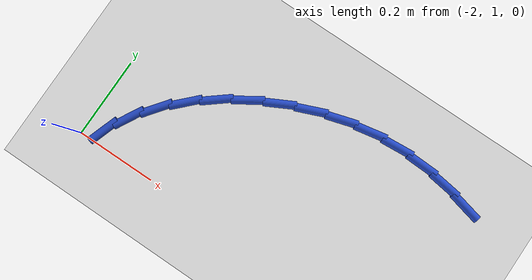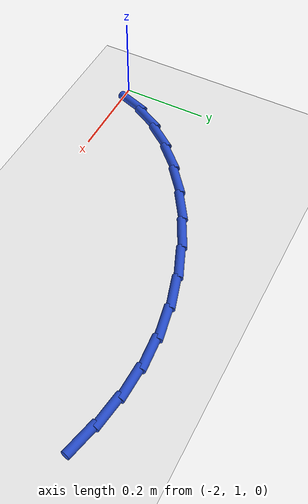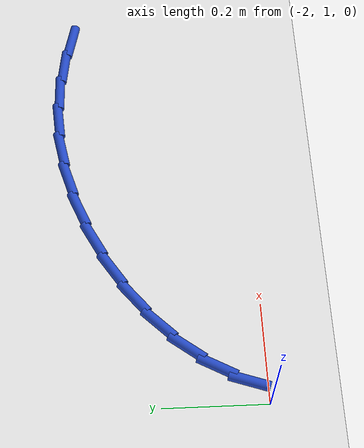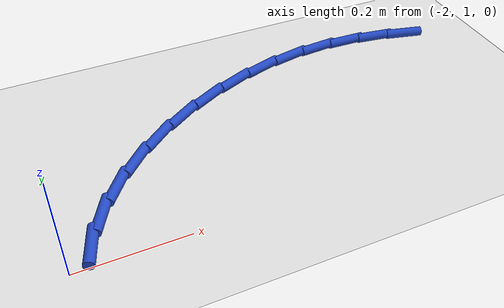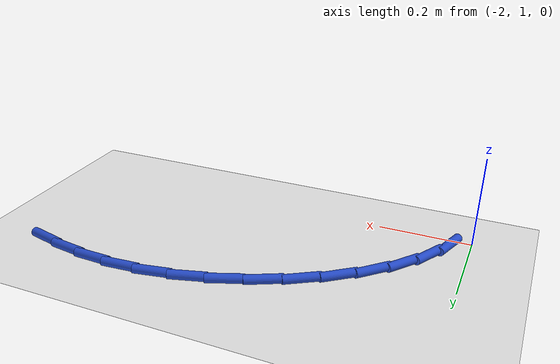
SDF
<sdf version="1.6">
 <world name="default">
  <model name="ground_plane">
   <static>1</static>
   <link name="link">
    <collision name="collision">
     <geometry><plane><normal>0 0 1</normal><size>100 100</size></plane></geometry>
     <surface><friction><ode><mu>100</mu><mu2>50</mu2></ode></friction></surface>
    </collision>
    <visual name="visual">
     <cast_shadows>0</cast_shadows>
     <geometry><plane><normal>0 0 1</normal><size>100 100</size></plane></geometry>
     <material>
      <script><uri>file://media/materials/scripts/gazebo.material</uri><name>Gazebo/WhiteGlow</name></script>
     </material>
    </visual>
   </link>
  </model>
  <model name="line">
   <link name="link_27">
    <pose>-1.162199440812481 1.3588918406521595 0.01 0 1.57 -0.2326661873847466</pose>
    <collision name="collision">
     <geometry><cylinder><radius>0.01</radius><length>0.08</length></cylinder></geometry>
    </collision>
    <visual name="visual">
     <material>
      <script><name>Gazebo/Blue</name><uri>file://media/materials/scripts/gazebo.material</uri></script>
     </material>
     <geometry><cylinder><radius>0.01</radius><length>0.08</length></cylinder></geometry>
    </visual>
   </link>
   <link name="link_28">
    <pose>-1.229540347161239 1.3748487722474203 0.01 0 1.57 -0.13768956488688786</pose>
    <collision name="collision">
     <geometry><cylinder><radius>0.01</radius><length>0.08</length></cylinder></geometry>
    </collision>
    <visual name="visual">
     <material>
      <script><name>Gazebo/Blue</name><uri>file://media/materials/scripts/gazebo.material</uri></script>
     </material>
     <geometry><cylinder><radius>0.01</radius><length>0.08</length></cylinder></geometry>
    </visual>
   </link>
   <link name="link_29">
    <pose>-1.2981120635829588 1.3843505040027377 0.01 0 1.57 -0.03307968328344518</pose>
    <collision name="collision">
     <geometry><cylinder><radius>0.01</radius><length>0.08</length></cylinder></geometry>
    </collision>
    <visual name="visual">
     <material>
      <script><name>Gazebo/Blue</name><uri>file://media/materials/scripts/gazebo.material</uri></script>
     </material>
     <geometry><cylinder><radius>0.01</radius><length>0.08</length></cylinder></geometry>
    </visual>
   </link>
   <link name="link_30">
    <pose>-1.3679211583905613 1.3866606094336038 0.01 0 1.57 0.07881757821262168</pose>
    <collision name="collision">
     <geometry><cylinder><radius>0.01</radius><length>0.08</length></cylinder></geometry>
    </collision>
    <visual name="visual">
     <material>
      <script><name>Gazebo/Blue</name><uri>file://media/materials/scripts/gazebo.material</uri></script>
     </material>
     <geometry><cylinder><radius>0.01</radius><length>0.08</length></cylinder></geometry>
    </visual>
   </link>
   <link name="link_31">
    <pose>-1.438967723717339 1.3810492667849807 0.01 0 1.57 0.18961923458002328</pose>
    <collision name="collision">
     <geometry><cylinder><radius>0.01</radius><length>0.08</length></cylinder></geometry>
    </collision>
    <visual name="visual">
     <material>
      <script><name>Gazebo/Blue</name><uri>file://media/materials/scripts/gazebo.material</uri></script>
     </material>
     <geometry><cylinder><radius>0.01</radius><length>0.08</length></cylinder></geometry>
    </visual>
   </link>
   <link name="link_32">
    <pose>-1.5107814224682432 1.367266421381941 0.01 0 1.57 0.2915770091411416</pose>
    <collision name="collision">
     <geometry><cylinder><radius>0.01</radius><length>0.08</length></cylinder></geometry>
    </collision>
    <visual name="visual">
     <material>
      <script><name>Gazebo/Blue</name><uri>file://media/materials/scripts/gazebo.material</uri></script>
     </material>
     <geometry><cylinder><radius>0.01</radius><length>0.08</length></cylinder></geometry>
    </visual>
   </link>
   <link name="link_33">
    <pose>-1.5821113276904428 1.3458581028365568 0.01 0 1.57 0.38797476218101123</pose>
    <collision name="collision">
     <geometry><cylinder><radius>0.01</radius><length>0.08</length></cylinder></geometry>
    </collision>
    <visual name="visual">
     <material>
      <script><name>Gazebo/Blue</name><uri>file://media/materials/scripts/gazebo.material</uri></script>
     </material>
     <geometry><cylinder><radius>0.01</radius><length>0.08</length></cylinder></geometry>
    </visual>
   </link>
   <link name="link_34">
    <pose>-1.6516329727404724 1.3174453401880653 0.01 0 1.57 0.4827618318560703</pose>
    <collision name="collision">
     <geometry><cylinder><radius>0.01</radius><length>0.08</length></cylinder></geometry>
    </collision>
    <visual name="visual">
     <material>
      <script><name>Gazebo/Blue</name><uri>file://media/materials/scripts/gazebo.material</uri></script>
     </material>
     <geometry><cylinder><radius>0.01</radius><length>0.08</length></cylinder></geometry>
    </visual>
   </link>
   <link name="link_35">
    <pose>-1.7180218909748688 1.2826491624757044 0.01 0 1.57 0.5798062434202585</pose>
    <collision name="collision">
     <geometry><cylinder><radius>0.01</radius><length>0.08</length></cylinder></geometry>
    </collision>
    <visual name="visual">
     <material>
      <script><name>Gazebo/Blue</name><uri>file://media/materials/scripts/gazebo.material</uri></script>
     </material>
     <geometry><cylinder><radius>0.01</radius><length>0.08</length></cylinder></geometry>
    </visual>
   </link>
   <link name="link_36">
    <pose>-1.7799536157501656 1.2420905987387114 0.01 0 1.57 0.6831526624247646</pose>
    <collision name="collision">
     <geometry><cylinder><radius>0.01</radius><length>0.08</length></cylinder></geometry>
    </collision>
    <visual name="visual">
     <material>
      <script><name>Gazebo/Blue</name><uri>file://media/materials/scripts/gazebo.material</uri></script>
     </material>
     <geometry><cylinder><radius>0.01</radius><length>0.08</length></cylinder></geometry>
    </visual>
   </link>
   <link name="link_37">
    <pose>-1.8361036804228985 1.1963906780163245 0.01 0 1.57 0.7972479122730215</pose>
    <collision name="collision">
     <geometry><cylinder><radius>0.01</radius><length>0.08</length></cylinder></geometry>
    </collision>
    <visual name="visual">
     <material>
      <script><name>Gazebo/Blue</name><uri>file://media/materials/scripts/gazebo.material</uri></script>
     </material>
     <geometry><cylinder><radius>0.01</radius><length>0.08</length></cylinder></geometry>
    </visual>
   </link>
   <link name="link_38">
    <pose>-1.8851476183496032 1.1461704293477812 0.01 0 1.57 0.9270151993290022</pose>
    <collision name="collision">
     <geometry><cylinder><radius>0.01</radius><length>0.08</length></cylinder></geometry>
    </collision>
    <visual name="visual">
     <material>
      <script><name>Gazebo/Blue</name><uri>file://media/materials/scripts/gazebo.material</uri></script>
     </material>
     <geometry><cylinder><radius>0.01</radius><length>0.08</length></cylinder></geometry>
    </visual>
   </link>
   <link name="link_39">
    <pose>-1.925760962886814 1.092050881772319 0.01 0 1.57 1.0775066277361613</pose>
    <collision name="collision">
     <geometry><cylinder><radius>0.01</radius><length>0.08</length></cylinder></geometry>
    </collision>
    <visual name="visual">
     <material>
      <script><name>Gazebo/Blue</name><uri>file://media/materials/scripts/gazebo.material</uri></script>
     </material>
     <geometry><cylinder><radius>0.01</radius><length>0.08</length></cylinder></geometry>
    </visual>
   </link>
   <link name="link_40">
    <pose>-1.9566192473910666 1.0346530643291754 0.01 0 1.57 1.245062337958484</pose>
    <collision name="collision">
     <geometry><cylinder><radius>0.01</radius><length>0.08</length></cylinder></geometry>
    </collision>
    <visual name="visual">
     <material>
      <script><name>Gazebo/Blue</name><uri>file://media/materials/scripts/gazebo.material</uri></script>
     </material>
     <geometry><cylinder><radius>0.01</radius><length>0.08</length></cylinder></geometry>
    </visual>
   </link>
  </model>
 </world>
</sdf>
